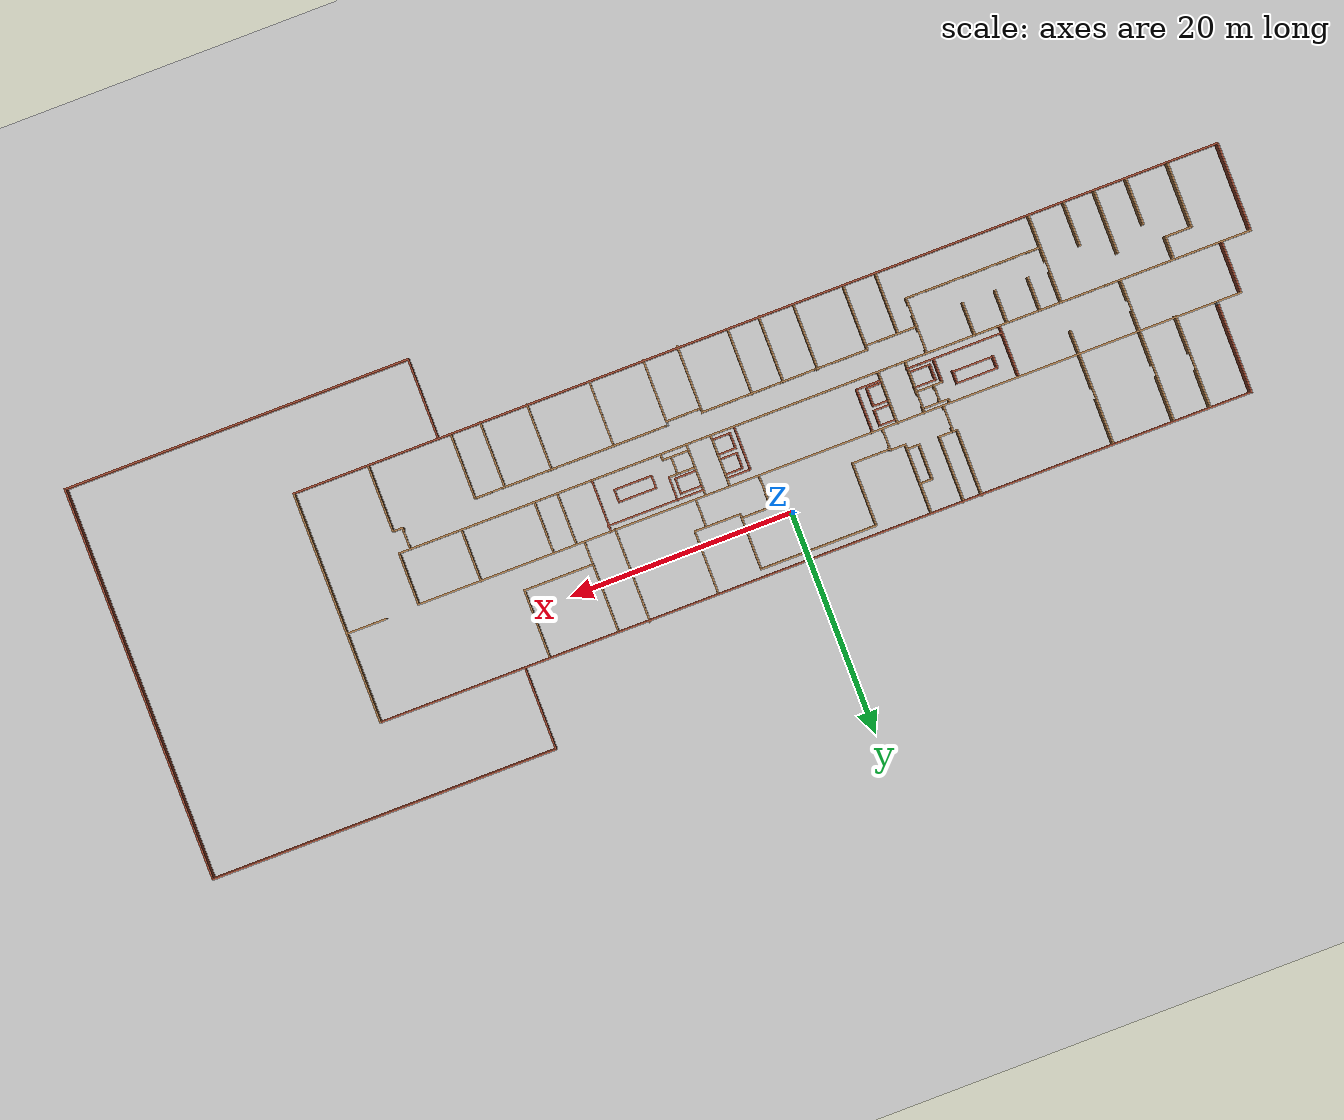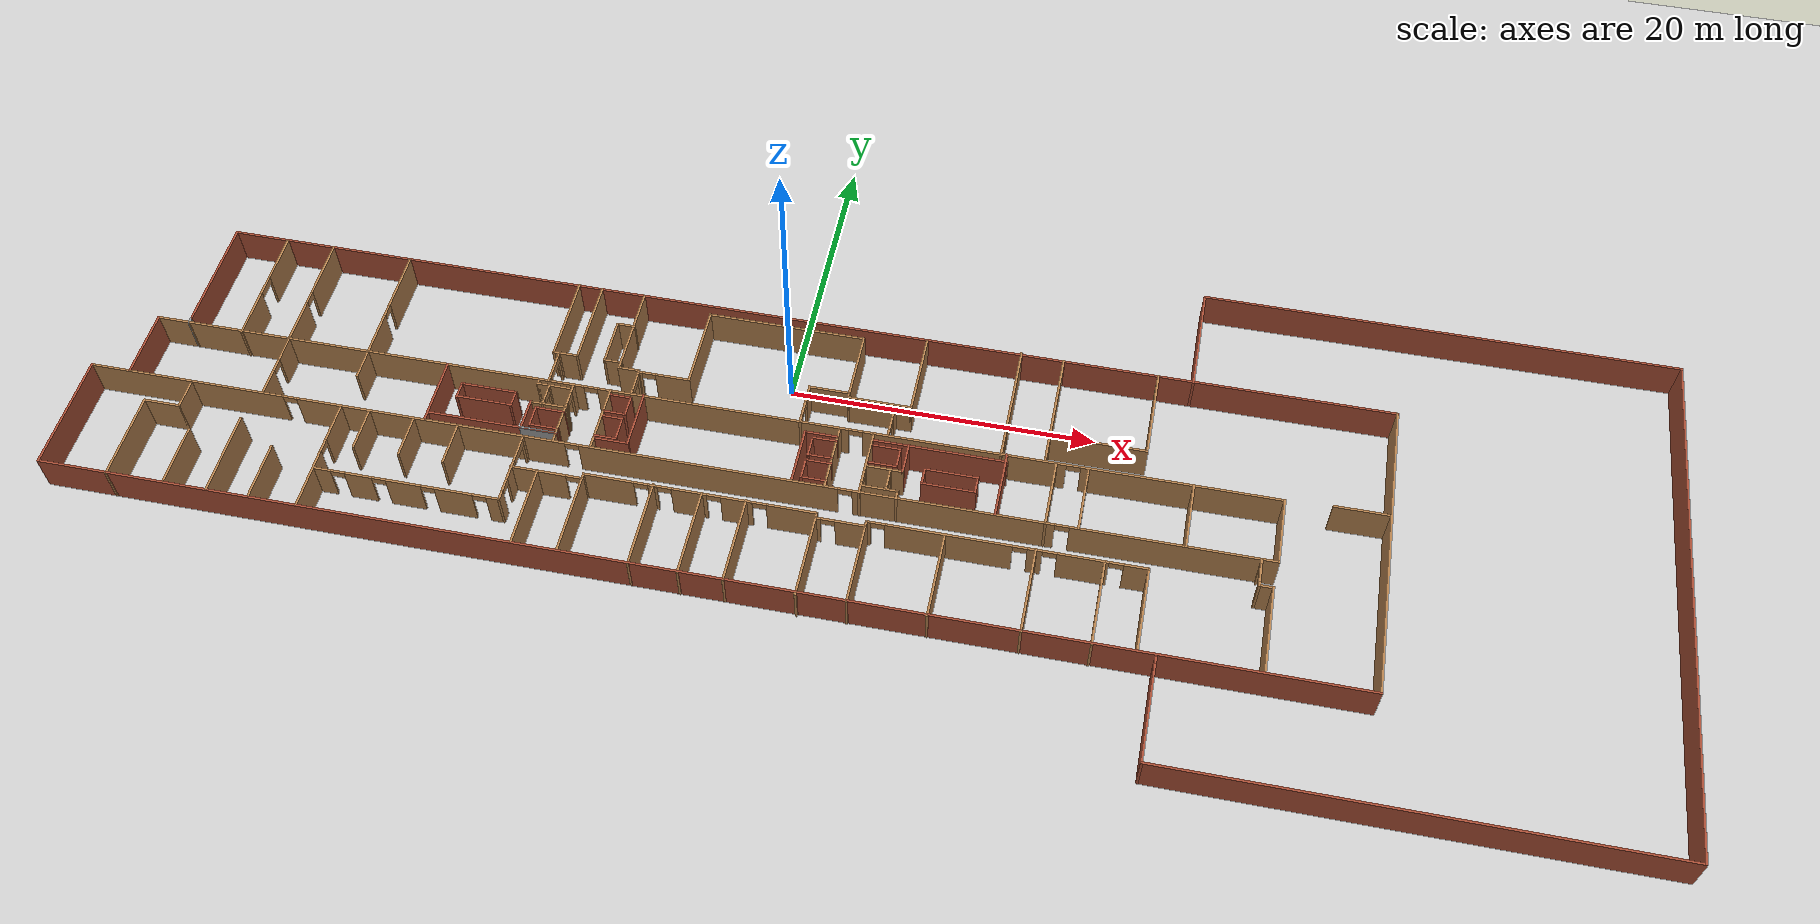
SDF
<?xml version="1.0" ?>
<sdf version="1.6">
  <world name="default">
      <gravity>0 0 -9.81</gravity>
  	<scene>
  		<shadows>0</shadows>

  	</scene>
    <physics type='ode'>

      <real_time_update_rate>250.0</real_time_update_rate>
      <!-- max step size has to be a multiple of the desired task rate-->
      <max_step_size>0.004</max_step_size>
      <real_time_factor>1</real_time_factor>

    </physics>
    <!-- A global light source -->
    <include>
      <uri>model://sun</uri>
    </include>

    <include>
      <uri>model://third_floor</uri>
	<pose> 6 -6 0 0 0 0</pose>
    </include>

    <!-- A ground plane -->
    <model name="ground_plane">
            <static>true</static>
            <link name="link">
              <collision name="collision">
                  <geometry>
                    <plane>
                      <normal>0 0 1</normal>
                      <size>100 100</size>
                    </plane>
                  </geometry>
                 <surface>
                  <friction>
                    <ode>
                      <mu>0.8</mu>
                      <mu2>0.8</mu2>
                    </ode>
                  </friction>
                </surface>
              </collision>

            <visual name="visual">
              <cast_shadows>false</cast_shadows>
              <geometry>
                <plane>
                  <normal>0 0 1</normal>
                  <size>100 100</size>
                </plane>
              </geometry>
              <material>
                <script>
                  <uri>file://media/materials/scripts/gazebo.material</uri>
                  <name>Gazebo/Grey</name>
                </script>
              </material>
            </visual>
          </link>
    </model>
  </world>
</sdf>
